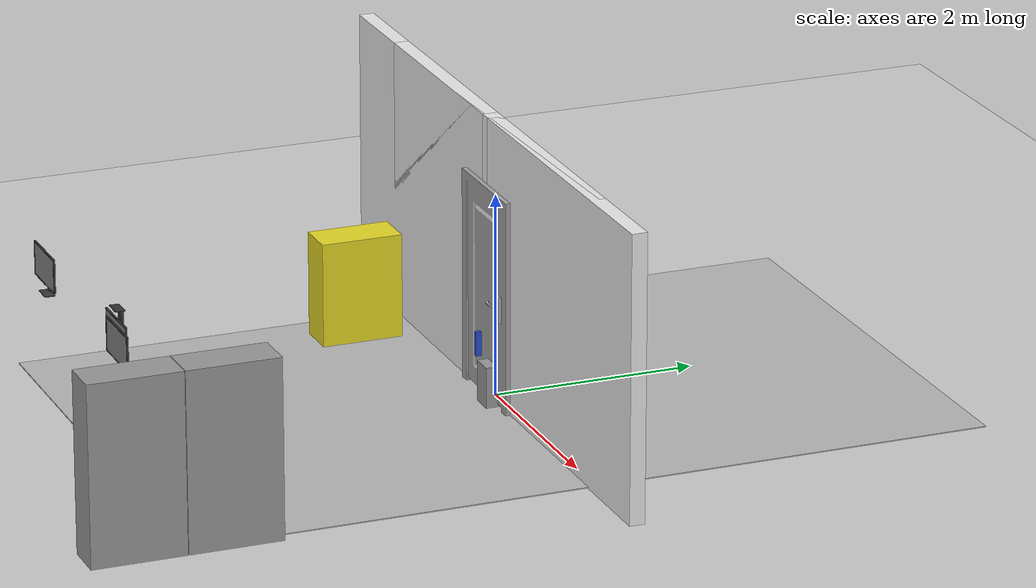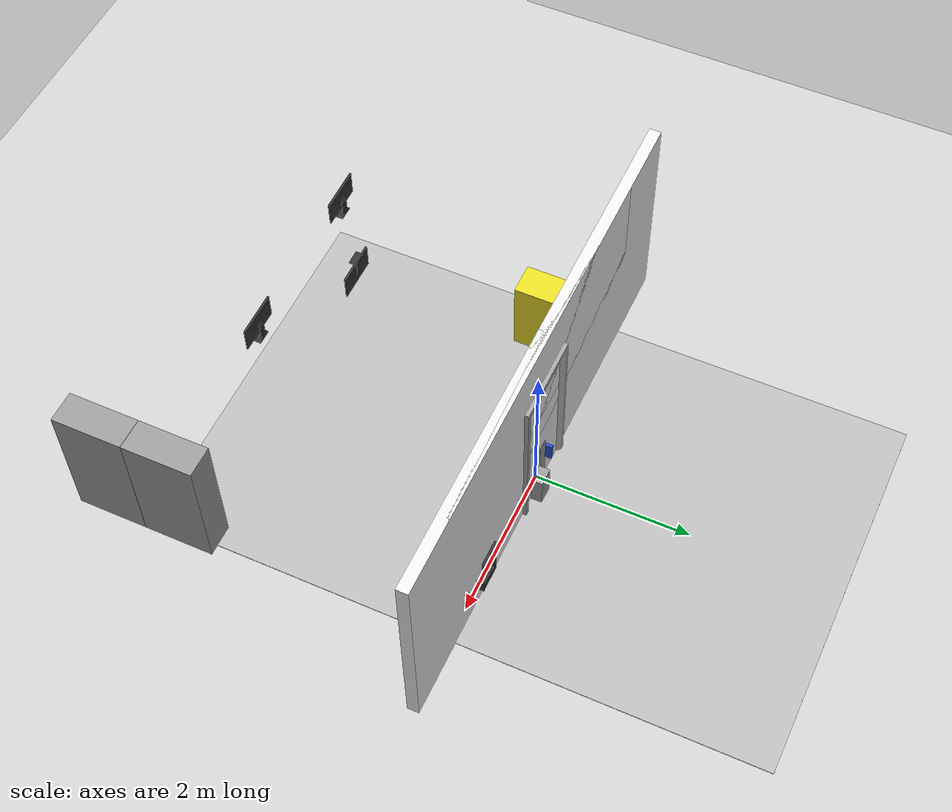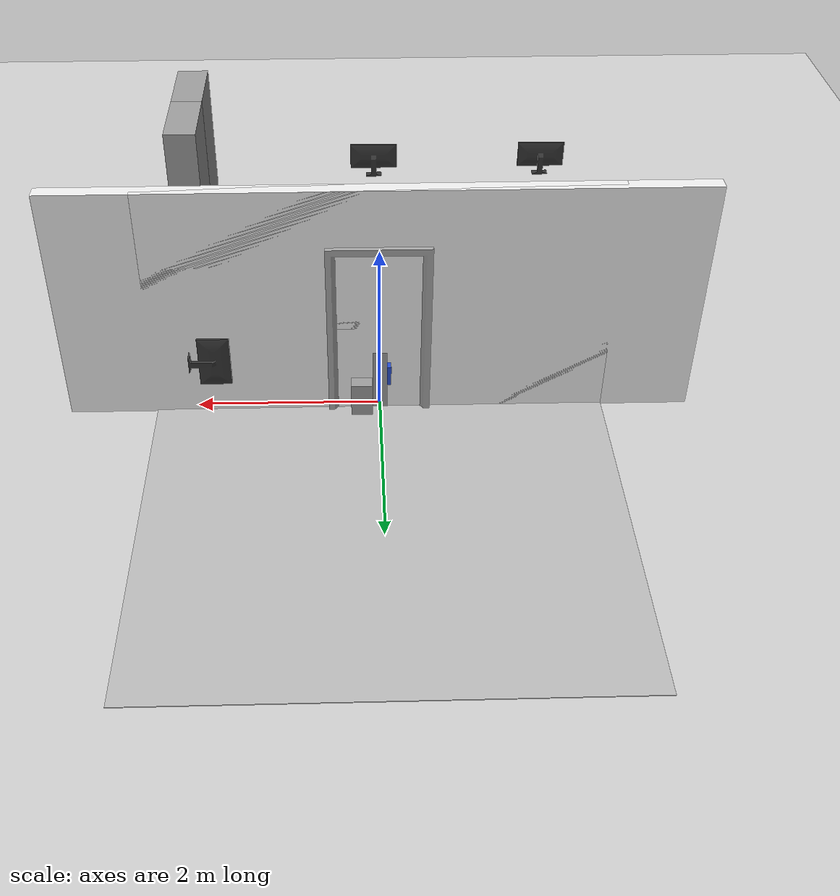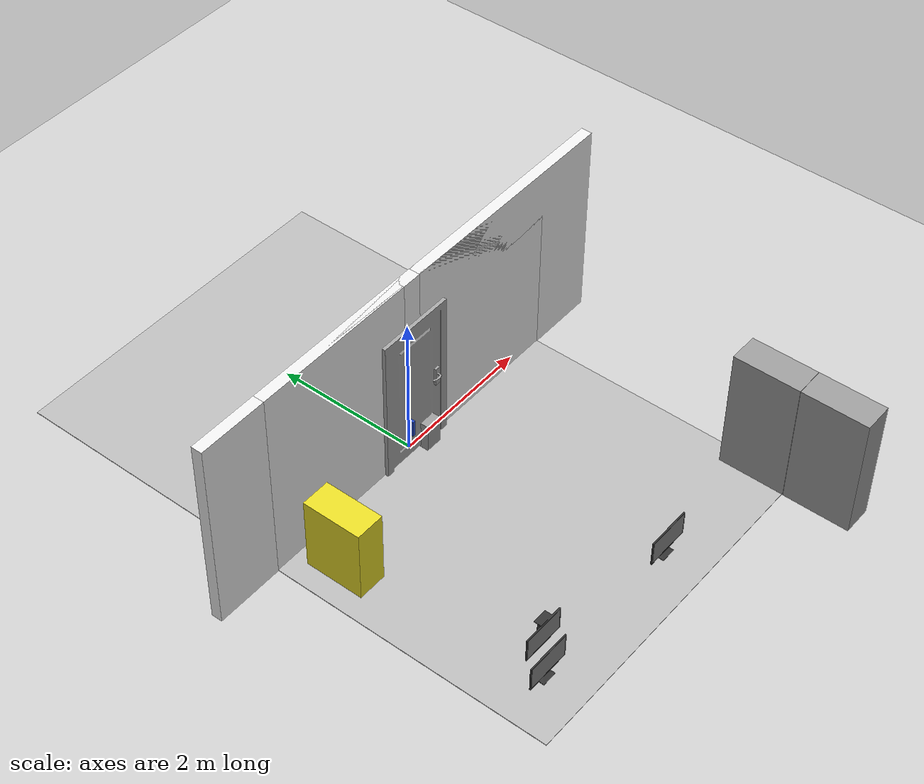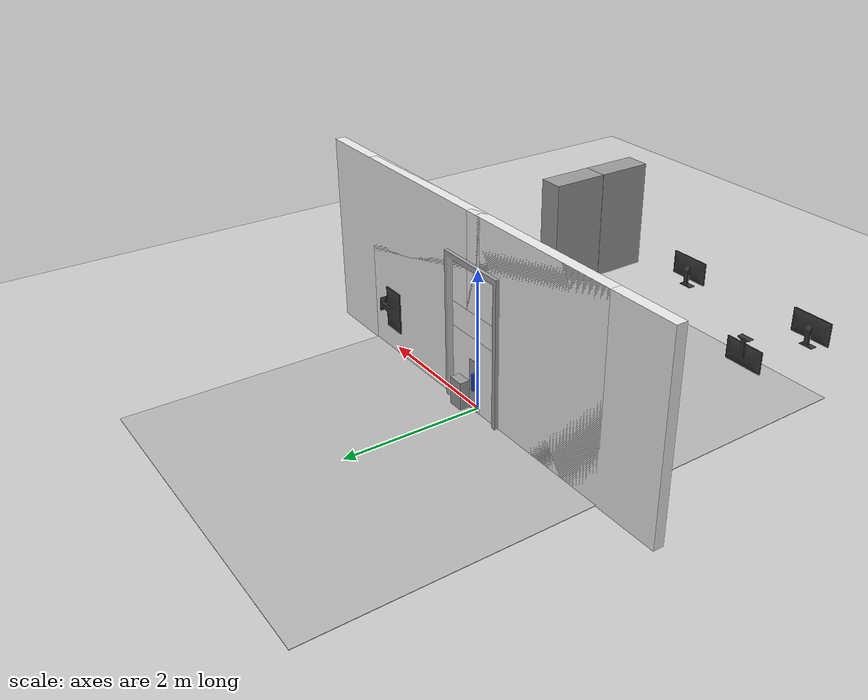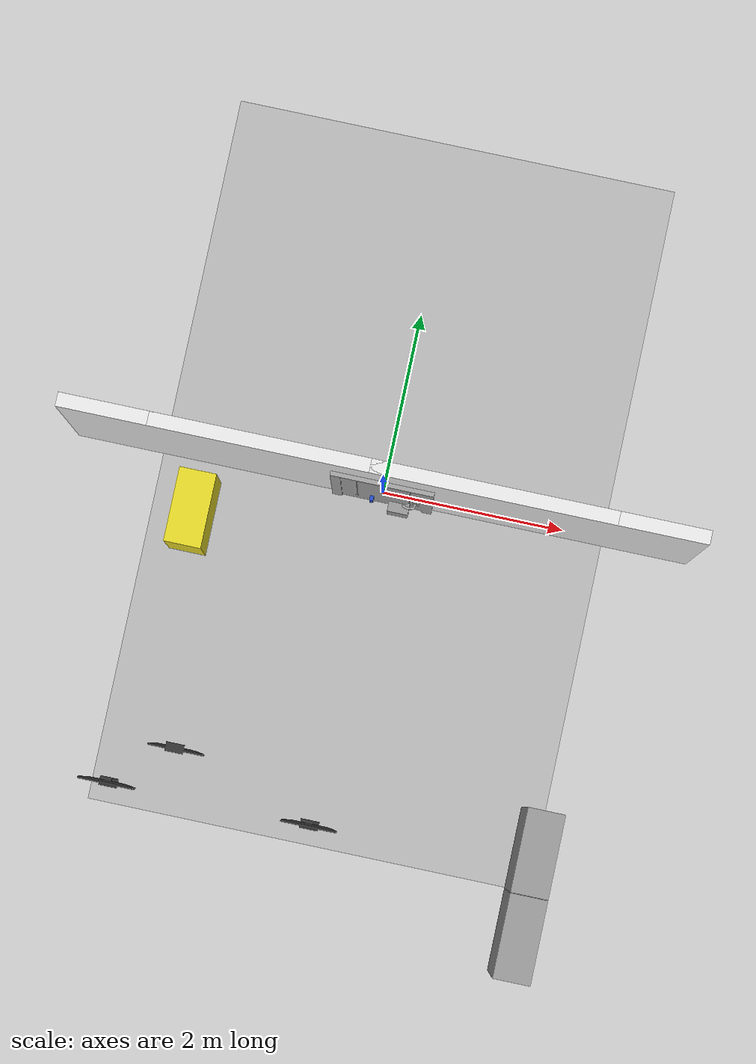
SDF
<sdf version="1.6">
 <world name="default">
  <light name="sun" type="directional">
   <pose>0 0 10 0 -0 0</pose>
   <diffuse>0.8 0.8 0.8 1</diffuse>
   <specular>0.1 0.1 0.1 1</specular>
   <attenuation>
    <range>1000</range>
    <constant>0.9</constant>
    <linear>0.01</linear>
    <quadratic>0.001</quadratic>
   </attenuation>
   <direction>-0.5 0.5 -1</direction>
  </light>
  <model name="ground_plane">
   <static>1</static>
   <link name="link">
    <collision name="collision">
     <geometry><plane><normal>0 0 1</normal><size>100 100</size></plane></geometry>
     <surface><friction><ode><mu>100</mu><mu2>50</mu2></ode></friction></surface>
    </collision>
    <visual name="visual">
     <cast_shadows>0</cast_shadows>
     <geometry><plane><normal>0 0 1</normal><size>100 100</size></plane></geometry>
     <material>
      <script><uri>file://media/materials/scripts/gazebo.material</uri><name>Gazebo/Grey</name></script>
     </material>
    </visual>
   </link>
  </model>
  <gravity>0 0 -9.8</gravity>
  <magnetic_field>6e-06 2.3e-05 -4.2e-05</magnetic_field>
  <atmosphere type="adiabatic"/>
  <physics name="default_physics" default="0" type="ode">
   <max_step_size>0.001</max_step_size>
   <real_time_factor>1</real_time_factor>
   <real_time_update_rate>1000</real_time_update_rate>
  </physics>
  <scene><ambient>0.4 0.4 0.4 1</ambient><background>0.7 0.7 0.7 1</background><shadows>1</shadows></scene>
  <spherical_coordinates>
   <surface_model>EARTH_WGS84</surface_model>
   <latitude_deg>0</latitude_deg>
   <longitude_deg>0</longitude_deg>
   <elevation>0</elevation>
   <heading_deg>0</heading_deg>
  </spherical_coordinates>
  <model name="office_small_1">
   <model name="Floor">
    <link name="main">
     <collision name="main_Collision"><geometry><box><size>4.9 7.865 0.01</size></box></geometry></collision>
     <visual name="main_Visual">
      <geometry><box><size>4.9 7.865 0.01</size></box></geometry>
      <material>
       <script>
        <uri>model://office_small/materials/scripts</uri>
        <uri>model://office_small/materials/textures</uri>
        <name>floor</name>
       </script>
      </material>
     </visual>
    </link>
    <static>1</static>
   </model>
   <model name="office_small">
    <link name="Wall_2">
     <visual name="Wall_2_Visual_0">
      <pose>0 0 1.25 0 -0 0</pose>
      <geometry><box><size>4.9 0.15 3.02</size></box></geometry>
      <material>
       <script>
        <uri>model://office_small/materials/scripts</uri>
        <uri>model://office_small/materials/textures</uri>
        <name>wall_white</name>
       </script>
      </material>
     </visual>
     <collision name="Wall_2_Collision_0">
      <geometry><box><size>4.9 0.15 3.02</size></box></geometry>
      <pose>0 0 1.25 0 -0 0</pose>
     </collision>
    </link>
    <link name="Wall_3">
     <visual name="Wall_3_Visual_0">
      <pose>0 0 1.25 0 -0 0</pose>
      <geometry><box><size>4.9 0.15 3.02</size></box></geometry>
      <material>
       <script>
        <uri>model://office_small/materials/scripts</uri>
        <uri>model://office_small/materials/textures</uri>
        <name>wall_white</name>
       </script>
      </material>
     </visual>
     <collision name="Wall_3_Collision_0">
      <geometry><box><size>4.9 0.15 3.02</size></box></geometry>
      <pose>0 0 1.25 0 -0 0</pose>
     </collision>
    </link>
    <link name="Wall_5">
     <visual name="Wall_5_Visual_0">
      <pose>0 0 1.25 0 -0 0</pose>
      <geometry><box><size>0.27 0.15 3.02</size></box></geometry>
      <material>
       <script>
        <uri>model://office_small/materials/scripts</uri>
        <uri>model://office_small/materials/textures</uri>
        <name>wall_white</name>
       </script>
      </material>
     </visual>
     <collision name="Wall_5_Collision_0">
      <geometry><box><size>0.12 0.15 3.02</size></box></geometry>
      <pose>0 0 1.25 0 -0 0</pose>
     </collision>
    </link>
    <link name="Wall_6">
     <visual name="Wall_6_Visual_0">
      <pose>0 0 1.25 0 -0 0</pose>
      <geometry><box><size>6.8 0.15 3.02</size></box></geometry>
      <material>
       <script>
        <uri>model://office_small/materials/scripts</uri>
        <uri>model://office_small/materials/textures</uri>
        <name>wall_white</name>
       </script>
      </material>
     </visual>
     <collision name="Wall_6_Collision_0">
      <geometry><box><size>6.8 0.15 3.02</size></box></geometry>
      <pose>0 0 1.25 0 -0 0</pose>
     </collision>
    </link>
    <link name="Wall_7">
     <visual name="Wall_7_Visual_0">
      <pose>0 0 1.25 0 -0 0</pose>
      <geometry><box><size>1.02 0.15 0.35</size></box></geometry>
      <material>
       <script>
        <uri>model://office_small/materials/scripts</uri>
        <uri>model://office_small/materials/textures</uri>
        <name>wall_white</name>
       </script>
      </material>
     </visual>
     <collision name="Wall_7_Collision_0">
      <geometry><box><size>1.02 0.15 0.35</size></box></geometry>
      <pose>0 0 1.25 0 -0 0</pose>
     </collision>
    </link>
    <static>1</static>
   </model>
   <model name="door_3d">
    <link name="link_1">
     <visual name="visual">
      <geometry><mesh><uri>model://door_3d/meshes/door_v2_door.dae</uri><scale>1 1 1</scale></mesh></geometry>
      <material>
       <script>
        <uri>model://door_3d/materials/scripts</uri>
        <uri>model://door_3d/materials/textures</uri>
        <name>door_3d</name>
       </script>
      </material>
     </visual>
     <collision name="collision">
      <geometry><mesh><uri>model://door_3d/meshes/door_v2_door.dae</uri><scale>1 1 1</scale></mesh></geometry>
     </collision>
    </link>
    <link name="link_2">
     <visual name="visual">
      <geometry><mesh><uri>model://door_3d/meshes/door_v2_handle.dae</uri><scale>1 1 1</scale></mesh></geometry>
      <material>
       <script>
        <uri>model://door_3d/materials/scripts</uri>
        <uri>model://door_3d/materials/textures</uri>
        <name>door_handle</name>
       </script>
      </material>
     </visual>
     <collision name="collision">
      <geometry><mesh><uri>model://door_3d/meshes/door_v2_handle.dae</uri><scale>1 1 1</scale></mesh></geometry>
     </collision>
    </link>
    <static>1</static>
   </model>
   <static>0</static>
  </model>
  <model name="table_1">
   <link name="Wall">
    <inertial>
     <mass>5</mass>
     <inertia><ixx>0.1022</ixx><iyy>0.2197</iyy><izz>0.1905</izz><ixy>0</ixy><ixz>0</ixz><iyz>0</iyz></inertia>
    </inertial>
    <collision name="Wall_Collision"><geometry><box><size>0.9 0.4 1.74125</size></box></geometry></collision>
    <visual name="Wall_Visual">
     <geometry><box><size>0.9 0.4 1.74125</size></box></geometry>
     <material>
      <script><uri>file://media/materials/scripts/gazebo.material</uri><name>Gazebo/Grey</name></script>
      <ambient>1 1 1 1</ambient>
     </material>
    </visual>
   </link>
   <static>1</static>
   <pose>2.385 -4.3965 0.870625 0 -0 1.5708</pose>
  </model>
  <model name="table_2">
   <link name="Wall_2">
    <inertial>
     <mass>5</mass>
     <inertia><ixx>0.1022</ixx><iyy>0.2197</iyy><izz>0.1905</izz><ixy>0</ixy><ixz>0</ixz><iyz>0</iyz></inertia>
    </inertial>
    <collision name="Wall_Collision_2"><geometry><box><size>0.9 0.4 1.74125</size></box></geometry></collision>
    <visual name="Wall_Visual_2">
     <geometry><box><size>0.9 0.4 1.74125</size></box></geometry>
     <material>
      <script><uri>file://media/materials/scripts/gazebo.material</uri><name>Gazebo/Grey</name></script>
      <ambient>1 1 1 1</ambient>
     </material>
    </visual>
   </link>
   <static>1</static>
   <pose>2.385 -3.4915 0.870625 0 -0 1.5708</pose>
  </model>
  <model name="table_4">
   <link name="Wall_4">
    <inertial>
     <mass>5</mass>
     <inertia><ixx>0.1022</ixx><iyy>0.2197</iyy><izz>0.1905</izz><ixy>0</ixy><ixz>0</ixz><iyz>0</iyz></inertia>
    </inertial>
    <collision name="Wall_Collision_4"><geometry><box><size>0.813 0.405 1.05</size></box></geometry></collision>
    <visual name="Wall_Visual_4">
     <geometry><box><size>0.813 0.405 1.05</size></box></geometry>
     <material>
      <script><uri>file://media/materials/scripts/gazebo.material</uri><name>Gazebo/Yellow</name></script>
      <ambient>1 1 1 1</ambient>
     </material>
    </visual>
   </link>
   <static>1</static>
   <pose>-1.9625 -0.6745 0.525 0 -0 -1.5708</pose>
  </model>
  <model name="table_5">
   <link name="Wall_5">
    <inertial>
     <mass>5</mass>
     <inertia><ixx>0.1022</ixx><iyy>0.2197</iyy><izz>0.1905</izz><ixy>0</ixy><ixz>0</ixz><iyz>0</iyz></inertia>
    </inertial>
    <collision name="Wall_Collision_5"><geometry><box><size>0.16 0.16 0.75</size></box></geometry></collision>
    <visual name="Wall_Visual_5">
     <geometry><box><size>0.16 0.16 0.75</size></box></geometry>
     <material>
      <script><uri>file://media/materials/scripts/gazebo.material</uri><name>Gazebo/Grey</name></script>
      <ambient>1 1 1 1</ambient>
     </material>
    </visual>
   </link>
   <static>1</static>
   <pose>0 0 0.375 0 -0 1.5708</pose>
  </model>
  <model name="table_6">
   <link name="Wall_6">
    <inertial>
     <mass>5</mass>
     <inertia><ixx>0.1022</ixx><iyy>0.2197</iyy><izz>0.1905</izz><ixy>0</ixy><ixz>0</ixz><iyz>0</iyz></inertia>
    </inertial>
    <collision name="Wall_Collision_6"><geometry><box><size>0.44 0.23 0.41</size></box></geometry></collision>
    <visual name="Wall_Visual_6">
     <geometry><box><size>0.44 0.23 0.41</size></box></geometry>
     <material>
      <script><uri>file://media/materials/scripts/gazebo.material</uri><name>Gazebo/Grey</name></script>
      <ambient>1 1 1 1</ambient>
     </material>
    </visual>
   </link>
   <static>1</static>
   <pose>0.20 0 0.205 0 -0 1.5708</pose>
  </model>
  <model name="table_8">
   <link name="Wall_8">
    <inertial>
     <mass>5</mass>
     <inertia><ixx>0.1022</ixx><iyy>0.2197</iyy><izz>0.1905</izz><ixy>0</ixy><ixz>0</ixz><iyz>0</iyz></inertia>
    </inertial>
    <collision name="Wall_Collision_8"><geometry><box><size>0.04 0.33 0.24</size></box></geometry></collision>
    <visual name="Wall_Visual_8">
     <geometry><box><size>0.04 0.33 0.24</size></box></geometry>
     <material>
      <script><uri>file://media/materials/scripts/gazebo.material</uri><name>Gazebo/Blue</name></script>
      <ambient>1 1 1 1</ambient>
     </material>
    </visual>
   </link>
   <static>1</static>
   <pose>-0.10 0 0.5 0 -0 3.1416</pose>
  </model>
  <model name="monitor_1">
   <link name="link_50_1">
    <pose>-0.305832 -0.059311 0 0 -0 0</pose>
    <visual name="visual_1">
     <geometry><mesh><uri>model://monitor_2/meshes/frame.dae</uri><scale>1 1 1</scale></mesh></geometry>
     <material>
      <lighting>1</lighting>
      <ambient>0 0 0 1</ambient>
      <diffuse>0.2 0.2 0.2 1</diffuse>
      <specular>0.01 0.01 0.01 1</specular>
      <emissive>0 0 0 1</emissive>
      <shader type="vertex"><normal_map>__default__</normal_map></shader>
     </material>
    </visual>
    <collision name="collision_1">
     <geometry><mesh><uri>model://monitor_2/meshes/frame.dae</uri><scale>1 1 1</scale></mesh></geometry>
    </collision>
   </link>
   <link name="link_51_1">
    <pose>-0.307748 -0.058272 0 0 -0 0</pose>
    <visual name="visual_2">
     <geometry><mesh><uri>model://monitor_2/meshes/screen1.dae</uri><scale>1 1 1</scale></mesh></geometry>
     <material>
      <script>
       <uri>model://monitor_2/materials/scripts</uri>
       <uri>model://monitor_2/materials/textures</uri>
       <name>monitor_screen_2</name>
      </script>
     </material>
    </visual>
    <collision name="collision_2">
     <geometry><mesh><uri>model://monitor_2/meshes/screen1.dae</uri><scale>1 1 1</scale></mesh></geometry>
    </collision>
   </link>
   <static>1</static>
   <pose>2.02886 0.21 0.765686 0 -1.5708 0.0</pose>
  </model>
  <model name="monitor_2">
   <link name="link_50_1">
    <pose>-0.305832 -0.059311 0 0 -0 0</pose>
    <visual name="visual_1">
     <geometry><mesh><uri>model://monitor_2/meshes/frame.dae</uri><scale>1 1 1</scale></mesh></geometry>
     <material>
      <lighting>1</lighting>
      <ambient>0 0 0 1</ambient>
      <diffuse>0.2 0.2 0.2 1</diffuse>
      <specular>0.01 0.01 0.01 1</specular>
      <emissive>0 0 0 1</emissive>
      <shader type="vertex"><normal_map>__default__</normal_map></shader>
     </material>
    </visual>
    <collision name="collision_1">
     <geometry><mesh><uri>model://monitor_2/meshes/frame.dae</uri><scale>1 1 1</scale></mesh></geometry>
    </collision>
   </link>
   <link name="link_51_1">
    <pose>-0.307748 -0.058272 0 0 -0 0</pose>
    <visual name="visual_2">
     <geometry><mesh><uri>model://monitor_2/meshes/screen1.dae</uri><scale>1 1 1</scale></mesh></geometry>
     <material>
      <script>
       <uri>model://monitor_2/materials/scripts</uri>
       <uri>model://monitor_2/materials/textures</uri>
       <name>monitor_screen_2</name>
      </script>
     </material>
    </visual>
    <collision name="collision_2">
     <geometry><mesh><uri>model://monitor_2/meshes/screen1.dae</uri><scale>1 1 1</scale></mesh></geometry>
    </collision>
   </link>
   <static>1</static>
   <pose>-1.6 -3.2 0.765686 0 3.14 0</pose>
  </model>
  <model name="monitor_3">
   <link name="link_50_1">
    <pose>-0.305832 -0.059311 0 0 -0 0</pose>
    <visual name="visual_1">
     <geometry><mesh><uri>model://monitor_2/meshes/frame.dae</uri><scale>1 1 1</scale></mesh></geometry>
     <material>
      <lighting>1</lighting>
      <ambient>0 0 0 1</ambient>
      <diffuse>0.2 0.2 0.2 1</diffuse>
      <specular>0.01 0.01 0.01 1</specular>
      <emissive>0 0 0 1</emissive>
      <shader type="vertex"><normal_map>__default__</normal_map></shader>
     </material>
    </visual>
    <collision name="collision_1">
     <geometry><mesh><uri>model://monitor_2/meshes/frame.dae</uri><scale>1 1 1</scale></mesh></geometry>
    </collision>
   </link>
   <link name="link_51_1">
    <pose>-0.307748 -0.058272 0 0 -0 0</pose>
    <visual name="visual_2">
     <geometry><mesh><uri>model://monitor_2/meshes/screen1.dae</uri><scale>1 1 1</scale></mesh></geometry>
     <material>
      <script>
       <uri>model://monitor_2/materials/scripts</uri>
       <uri>model://monitor_2/materials/textures</uri>
       <name>monitor_screen_2</name>
      </script>
     </material>
    </visual>
    <collision name="collision_2">
     <geometry><mesh><uri>model://monitor_2/meshes/screen1.dae</uri><scale>1 1 1</scale></mesh></geometry>
    </collision>
   </link>
   <static>1</static>
   <pose>-2.2 -3.7 0.765686 0 0 0</pose>
  </model>
  <model name="monitor_4">
   <link name="link_50_1">
    <pose>-0.305832 -0.059311 0 0 -0 0</pose>
    <visual name="visual_1">
     <geometry><mesh><uri>model://monitor_2/meshes/frame.dae</uri><scale>1 1 1</scale></mesh></geometry>
     <material>
      <lighting>1</lighting>
      <ambient>0 0 0 1</ambient>
      <diffuse>0.2 0.2 0.2 1</diffuse>
      <specular>0.01 0.01 0.01 1</specular>
      <emissive>0 0 0 1</emissive>
      <shader type="vertex"><normal_map>__default__</normal_map></shader>
     </material>
    </visual>
    <collision name="collision_1">
     <geometry><mesh><uri>model://monitor_2/meshes/frame.dae</uri><scale>1 1 1</scale></mesh></geometry>
    </collision>
   </link>
   <link name="link_51_1">
    <pose>-0.307748 -0.058272 0 0 -0 0</pose>
    <visual name="visual_2">
     <geometry><mesh><uri>model://monitor_2/meshes/screen1.dae</uri><scale>1 1 1</scale></mesh></geometry>
     <material>
      <script>
       <uri>model://monitor_2/materials/scripts</uri>
       <uri>model://monitor_2/materials/textures</uri>
       <name>monitor_screen_2</name>
      </script>
     </material>
    </visual>
    <collision name="collision_2">
     <geometry><mesh><uri>model://monitor_2/meshes/screen1.dae</uri><scale>1 1 1</scale></mesh></geometry>
    </collision>
   </link>
   <static>1</static>
   <pose>-0.01 -3.7 0.765686 0 0 0</pose>
  </model>
 </world>
</sdf>
